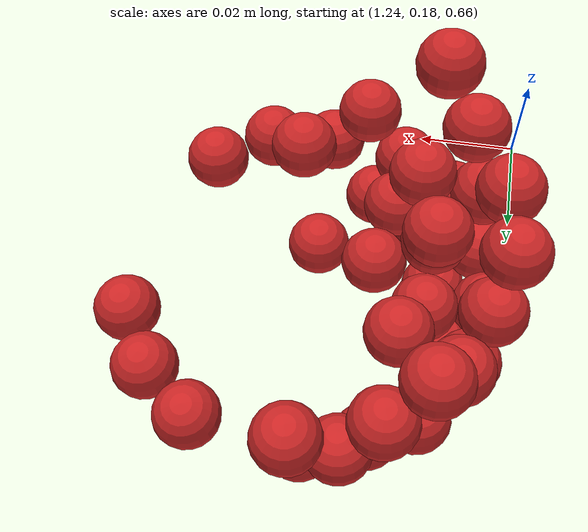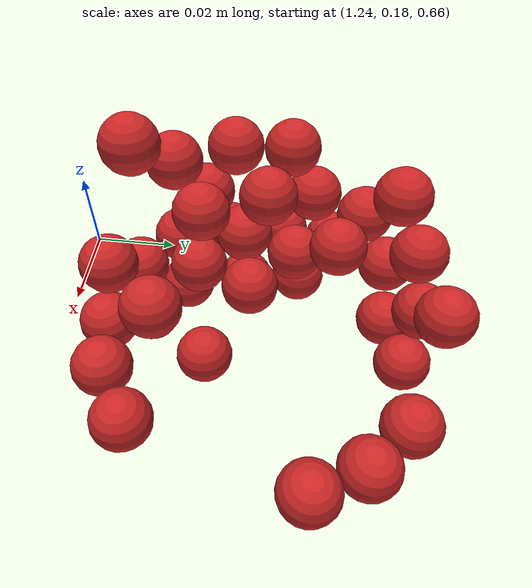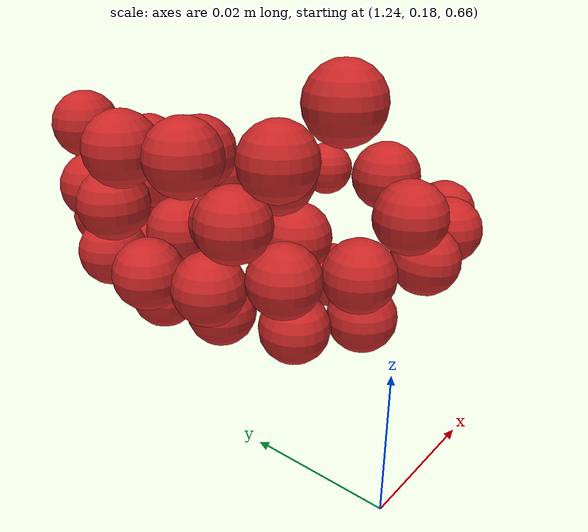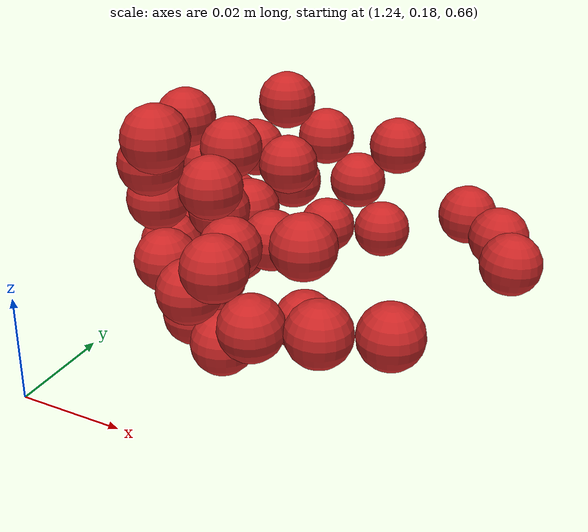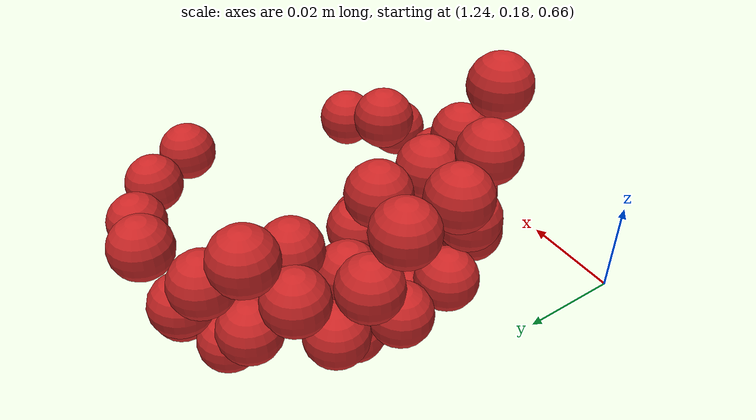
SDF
<sdf version="1.4">
 <world name="default">
  <model name="ground_plane">
   <static>1</static>
   <link name="link">
    <collision name="collision">
     <geometry><plane><normal>0 0 1</normal><size>100 100</size></plane></geometry>
     <surface><friction><ode><mu>100</mu><mu2>50</mu2></ode></friction></surface>
    </collision>
    <visual name="visual">
     <cast_shadows>0</cast_shadows>
     <geometry><plane><normal>0 0 1</normal><size>100 100</size></plane></geometry>
     <material>
      <script><uri>file://media/materials/scripts/gazebo.material</uri><name>Gazebo/Grey</name></script>
     </material>
    </visual>
    <velocity_decay><linear>0</linear><angular>0</angular></velocity_decay>
   </link>
  </model>
  <model name="sphere1">
   <pose>-0.016605 -0.050553 -0.032877 -0.006956 0.001233 0.006925</pose>
   <link name="link">
    <pose>1.28814 0.232149 0.722288 0 -0 0</pose>
    <inertial>
     <mass>0.001</mass>
     <inertia><ixx>0.004</ixx><ixy>0</ixy><ixz>0</ixz><iyy>0.004</iyy><iyz>0</iyz><izz>0.004</izz></inertia>
    </inertial>
    <collision name="collision">
     <surface>
      <contact><ode><kp>1e+10</kp><kd>1</kd></ode></contact>
      <friction><ode><mu>0.01</mu><mu2>0.01</mu2></ode></friction>
     </surface>
     <geometry><sphere><radius>0.006</radius></sphere></geometry>
    </collision>
    <visual name="visual">
     <geometry><sphere><radius>0.006</radius></sphere></geometry>
     <material>
      <script><uri>file://media/materials/scripts/gazebo.material</uri><name>Gazebo/Red</name></script>
     </material>
    </visual>
    <velocity_decay><linear>0</linear><angular>0</angular></velocity_decay>
   </link>
   <static>0</static>
  </model>
  <model name="sphere2">
   <pose>-0.03156 0.024433 -0.046757 0.091912 0.013346 0.004879</pose>
   <link name="link">
    <pose>1.30014 0.232149 0.722288 0 -0 0</pose>
    <inertial>
     <mass>0.001</mass>
     <inertia><ixx>0.004</ixx><ixy>0</ixy><ixz>0</ixz><iyy>0.004</iyy><iyz>0</iyz><izz>0.004</izz></inertia>
    </inertial>
    <collision name="collision">
     <surface>
      <contact><ode><kp>1e+10</kp><kd>1</kd></ode></contact>
      <friction><ode><mu>0.01</mu><mu2>0.01</mu2></ode></friction>
     </surface>
     <geometry><sphere><radius>0.006</radius></sphere></geometry>
    </collision>
    <visual name="visual">
     <geometry><sphere><radius>0.006</radius></sphere></geometry>
     <material>
      <script><uri>file://media/materials/scripts/gazebo.material</uri><name>Gazebo/Red</name></script>
     </material>
    </visual>
    <velocity_decay><linear>0</linear><angular>0</angular></velocity_decay>
   </link>
   <static>0</static>
  </model>
  <model name="sphere3">
   <pose>-0.020545 -0.054807 -0.027745 -0.009718 0.01113 0.002303</pose>
   <link name="link">
    <pose>1.27614 0.244149 0.722288 0 -0 0</pose>
    <inertial>
     <mass>0.001</mass>
     <inertia><ixx>0.004</ixx><ixy>0</ixy><ixz>0</ixz><iyy>0.004</iyy><iyz>0</iyz><izz>0.004</izz></inertia>
    </inertial>
    <collision name="collision">
     <surface>
      <contact><ode><kp>1e+10</kp><kd>1</kd></ode></contact>
      <friction><ode><mu>0.01</mu><mu2>0.01</mu2></ode></friction>
     </surface>
     <geometry><sphere><radius>0.006</radius></sphere></geometry>
    </collision>
    <visual name="visual">
     <geometry><sphere><radius>0.006</radius></sphere></geometry>
     <material>
      <script><uri>file://media/materials/scripts/gazebo.material</uri><name>Gazebo/Red</name></script>
     </material>
    </visual>
    <velocity_decay><linear>0</linear><angular>0</angular></velocity_decay>
   </link>
   <static>0</static>
  </model>
  <model name="sphere4">
   <pose>-0.019638 -0.020213 -0.048444 0.000771 -0.002935 7.9e-05</pose>
   <link name="link">
    <pose>1.28814 0.244149 0.722288 0 -0 0</pose>
    <inertial>
     <mass>0.001</mass>
     <inertia><ixx>0.004</ixx><ixy>0</ixy><ixz>0</ixz><iyy>0.004</iyy><iyz>0</iyz><izz>0.004</izz></inertia>
    </inertial>
    <collision name="collision">
     <surface>
      <contact><ode><kp>1e+10</kp><kd>1</kd></ode></contact>
      <friction><ode><mu>0.01</mu><mu2>0.01</mu2></ode></friction>
     </surface>
     <geometry><sphere><radius>0.006</radius></sphere></geometry>
    </collision>
    <visual name="visual">
     <geometry><sphere><radius>0.006</radius></sphere></geometry>
     <material>
      <script><uri>file://media/materials/scripts/gazebo.material</uri><name>Gazebo/Red</name></script>
     </material>
    </visual>
    <velocity_decay><linear>0</linear><angular>0</angular></velocity_decay>
   </link>
   <static>0</static>
  </model>
  <model name="sphere6">
   <pose>-0.0296 -0.04667 -0.030311 0.00043 0.003534 0.00235</pose>
   <link name="link">
    <pose>1.27614 0.256149 0.722288 0 -0 0</pose>
    <inertial>
     <mass>0.001</mass>
     <inertia><ixx>0.004</ixx><ixy>0</ixy><ixz>0</ixz><iyy>0.004</iyy><iyz>0</iyz><izz>0.004</izz></inertia>
    </inertial>
    <collision name="collision">
     <surface>
      <contact><ode><kp>1e+10</kp><kd>1</kd></ode></contact>
      <friction><ode><mu>0.01</mu><mu2>0.01</mu2></ode></friction>
     </surface>
     <geometry><sphere><radius>0.006</radius></sphere></geometry>
    </collision>
    <visual name="visual">
     <geometry><sphere><radius>0.006</radius></sphere></geometry>
     <material>
      <script><uri>file://media/materials/scripts/gazebo.material</uri><name>Gazebo/Red</name></script>
     </material>
    </visual>
    <velocity_decay><linear>0</linear><angular>0</angular></velocity_decay>
   </link>
   <static>0</static>
  </model>
  <model name="sphere7">
   <pose>-0.046009 -0.034845 -0.037973 0.003183 0.007088 -0.001687</pose>
   <link name="link">
    <pose>1.28814 0.256149 0.722288 0 -0 0</pose>
    <inertial>
     <mass>0.001</mass>
     <inertia><ixx>0.004</ixx><ixy>0</ixy><ixz>0</ixz><iyy>0.004</iyy><iyz>0</iyz><izz>0.004</izz></inertia>
    </inertial>
    <collision name="collision">
     <surface>
      <contact><ode><kp>1e+10</kp><kd>1</kd></ode></contact>
      <friction><ode><mu>0.01</mu><mu2>0.01</mu2></ode></friction>
     </surface>
     <geometry><sphere><radius>0.006</radius></sphere></geometry>
    </collision>
    <visual name="visual">
     <geometry><sphere><radius>0.006</radius></sphere></geometry>
     <material>
      <script><uri>file://media/materials/scripts/gazebo.material</uri><name>Gazebo/Red</name></script>
     </material>
    </visual>
    <velocity_decay><linear>0</linear><angular>0</angular></velocity_decay>
   </link>
   <static>0</static>
  </model>
  <model name="sphere10">
   <pose>-0.037418 -0.015098 -0.056492 0.011145 0.009968 -0.000589</pose>
   <link name="link">
    <pose>1.28814 0.232149 0.734288 0 -0 0</pose>
    <inertial>
     <mass>0.001</mass>
     <inertia><ixx>0.004</ixx><ixy>0</ixy><ixz>0</ixz><iyy>0.004</iyy><iyz>0</iyz><izz>0.004</izz></inertia>
    </inertial>
    <collision name="collision">
     <surface>
      <contact><ode><kp>1e+10</kp><kd>1</kd></ode></contact>
      <friction><ode><mu>0.01</mu><mu2>0.01</mu2></ode></friction>
     </surface>
     <geometry><sphere><radius>0.006</radius></sphere></geometry>
    </collision>
    <visual name="visual">
     <geometry><sphere><radius>0.006</radius></sphere></geometry>
     <material>
      <script><uri>file://media/materials/scripts/gazebo.material</uri><name>Gazebo/Red</name></script>
     </material>
    </visual>
    <velocity_decay><linear>0</linear><angular>0</angular></velocity_decay>
   </link>
   <static>0</static>
  </model>
  <model name="sphere11">
   <pose>-0.029988 -0.048635 -0.064378 -0.02484 -0.002739 -4e-05</pose>
   <link name="link">
    <pose>1.30014 0.232149 0.734288 0 -0 0</pose>
    <inertial>
     <mass>0.001</mass>
     <inertia><ixx>0.004</ixx><ixy>0</ixy><ixz>0</ixz><iyy>0.004</iyy><iyz>0</iyz><izz>0.004</izz></inertia>
    </inertial>
    <collision name="collision">
     <surface>
      <contact><ode><kp>1e+10</kp><kd>1</kd></ode></contact>
      <friction><ode><mu>0.01</mu><mu2>0.01</mu2></ode></friction>
     </surface>
     <geometry><sphere><radius>0.006</radius></sphere></geometry>
    </collision>
    <visual name="visual">
     <geometry><sphere><radius>0.006</radius></sphere></geometry>
     <material>
      <script><uri>file://media/materials/scripts/gazebo.material</uri><name>Gazebo/Red</name></script>
     </material>
    </visual>
    <velocity_decay><linear>0</linear><angular>0</angular></velocity_decay>
   </link>
   <static>0</static>
  </model>
  <model name="sphere15">
   <pose>-0.022106 -0.038657 -0.06072 0.004887 -0.002802 -0.005754</pose>
   <link name="link">
    <pose>1.27614 0.256149 0.734288 0 -0 0</pose>
    <inertial>
     <mass>0.001</mass>
     <inertia><ixx>0.004</ixx><ixy>0</ixy><ixz>0</ixz><iyy>0.004</iyy><iyz>0</iyz><izz>0.004</izz></inertia>
    </inertial>
    <collision name="collision">
     <surface>
      <contact><ode><kp>1e+10</kp><kd>1</kd></ode></contact>
      <friction><ode><mu>0.01</mu><mu2>0.01</mu2></ode></friction>
     </surface>
     <geometry><sphere><radius>0.006</radius></sphere></geometry>
    </collision>
    <visual name="visual">
     <geometry><sphere><radius>0.006</radius></sphere></geometry>
     <material>
      <script><uri>file://media/materials/scripts/gazebo.material</uri><name>Gazebo/Red</name></script>
     </material>
    </visual>
    <velocity_decay><linear>0</linear><angular>0</angular></velocity_decay>
   </link>
   <static>0</static>
  </model>
  <model name="sphere16">
   <pose>-0.042632 -0.028102 -0.05267 0.008144 0.01256 -0.000636</pose>
   <link name="link">
    <pose>1.28814 0.256149 0.734288 0 -0 0</pose>
    <inertial>
     <mass>0.001</mass>
     <inertia><ixx>0.004</ixx><ixy>0</ixy><ixz>0</ixz><iyy>0.004</iyy><iyz>0</iyz><izz>0.004</izz></inertia>
    </inertial>
    <collision name="collision">
     <surface>
      <contact><ode><kp>1e+10</kp><kd>1</kd></ode></contact>
      <friction><ode><mu>0.01</mu><mu2>0.01</mu2></ode></friction>
     </surface>
     <geometry><sphere><radius>0.006</radius></sphere></geometry>
    </collision>
    <visual name="visual">
     <geometry><sphere><radius>0.006</radius></sphere></geometry>
     <material>
      <script><uri>file://media/materials/scripts/gazebo.material</uri><name>Gazebo/Red</name></script>
     </material>
    </visual>
    <velocity_decay><linear>0</linear><angular>0</angular></velocity_decay>
   </link>
   <static>0</static>
  </model>
  <model name="sphere17">
   <pose>-0.052029 0.012497 -0.043813 0.022962 0.021947 0.001176</pose>
   <link name="link">
    <pose>1.30014 0.256149 0.734288 0 -0 0</pose>
    <inertial>
     <mass>0.001</mass>
     <inertia><ixx>0.004</ixx><ixy>0</ixy><ixz>0</ixz><iyy>0.004</iyy><iyz>0</iyz><izz>0.004</izz></inertia>
    </inertial>
    <collision name="collision">
     <surface>
      <contact><ode><kp>1e+10</kp><kd>1</kd></ode></contact>
      <friction><ode><mu>0.01</mu><mu2>0.01</mu2></ode></friction>
     </surface>
     <geometry><sphere><radius>0.006</radius></sphere></geometry>
    </collision>
    <visual name="visual">
     <geometry><sphere><radius>0.006</radius></sphere></geometry>
     <material>
      <script><uri>file://media/materials/scripts/gazebo.material</uri><name>Gazebo/Red</name></script>
     </material>
    </visual>
    <velocity_decay><linear>0</linear><angular>0</angular></velocity_decay>
   </link>
   <static>0</static>
  </model>
  <model name="sphere21">
   <pose>-0.018044 -0.048968 -0.040357 -0.006757 -0.00101 -0.000459</pose>
   <link name="link">
    <pose>1.27614 0.244149 0.746288 0 -0 0</pose>
    <inertial>
     <mass>0.001</mass>
     <inertia><ixx>0.004</ixx><ixy>0</ixy><ixz>0</ixz><iyy>0.004</iyy><iyz>0</iyz><izz>0.004</izz></inertia>
    </inertial>
    <collision name="collision">
     <surface>
      <contact><ode><kp>1e+10</kp><kd>1</kd></ode></contact>
      <friction><ode><mu>0.01</mu><mu2>0.01</mu2></ode></friction>
     </surface>
     <geometry><sphere><radius>0.006</radius></sphere></geometry>
    </collision>
    <visual name="visual">
     <geometry><sphere><radius>0.006</radius></sphere></geometry>
     <material>
      <script><uri>file://media/materials/scripts/gazebo.material</uri><name>Gazebo/Red</name></script>
     </material>
    </visual>
    <velocity_decay><linear>0</linear><angular>0</angular></velocity_decay>
   </link>
   <static>0</static>
  </model>
  <model name="sphere22">
   <pose>-0.024387 -0.02344 -0.068523 0.010353 -0.000228 -0.00049</pose>
   <link name="link">
    <pose>1.28814 0.244149 0.746288 0 -0 0</pose>
    <inertial>
     <mass>0.001</mass>
     <inertia><ixx>0.004</ixx><ixy>0</ixy><ixz>0</ixz><iyy>0.004</iyy><iyz>0</iyz><izz>0.004</izz></inertia>
    </inertial>
    <collision name="collision">
     <surface>
      <contact><ode><kp>1e+10</kp><kd>1</kd></ode></contact>
      <friction><ode><mu>0.01</mu><mu2>0.01</mu2></ode></friction>
     </surface>
     <geometry><sphere><radius>0.006</radius></sphere></geometry>
    </collision>
    <visual name="visual">
     <geometry><sphere><radius>0.006</radius></sphere></geometry>
     <material>
      <script><uri>file://media/materials/scripts/gazebo.material</uri><name>Gazebo/Red</name></script>
     </material>
    </visual>
    <velocity_decay><linear>0</linear><angular>0</angular></velocity_decay>
   </link>
   <static>0</static>
  </model>
  <model name="sphere23">
   <pose>-0.021361 -0.02482 -0.081837 0.004586 -0.001445 -0.000687</pose>
   <link name="link">
    <pose>1.30014 0.244149 0.746288 0 -0 0</pose>
    <inertial>
     <mass>0.001</mass>
     <inertia><ixx>0.004</ixx><ixy>0</ixy><ixz>0</ixz><iyy>0.004</iyy><iyz>0</iyz><izz>0.004</izz></inertia>
    </inertial>
    <collision name="collision">
     <surface>
      <contact><ode><kp>1e+10</kp><kd>1</kd></ode></contact>
      <friction><ode><mu>0.01</mu><mu2>0.01</mu2></ode></friction>
     </surface>
     <geometry><sphere><radius>0.006</radius></sphere></geometry>
    </collision>
    <visual name="visual">
     <geometry><sphere><radius>0.006</radius></sphere></geometry>
     <material>
      <script><uri>file://media/materials/scripts/gazebo.material</uri><name>Gazebo/Red</name></script>
     </material>
    </visual>
    <velocity_decay><linear>0</linear><angular>0</angular></velocity_decay>
   </link>
   <static>0</static>
  </model>
  <model name="sphere24">
   <pose>-0.032333 -0.03788 -0.046941 0.000676 0.001702 0.000337</pose>
   <link name="link">
    <pose>1.27614 0.256149 0.746288 0 -0 0</pose>
    <inertial>
     <mass>0.001</mass>
     <inertia><ixx>0.004</ixx><ixy>0</ixy><ixz>0</ixz><iyy>0.004</iyy><iyz>0</iyz><izz>0.004</izz></inertia>
    </inertial>
    <collision name="collision">
     <surface>
      <contact><ode><kp>1e+10</kp><kd>1</kd></ode></contact>
      <friction><ode><mu>0.01</mu><mu2>0.01</mu2></ode></friction>
     </surface>
     <geometry><sphere><radius>0.006</radius></sphere></geometry>
    </collision>
    <visual name="visual">
     <geometry><sphere><radius>0.006</radius></sphere></geometry>
     <material>
      <script><uri>file://media/materials/scripts/gazebo.material</uri><name>Gazebo/Red</name></script>
     </material>
    </visual>
    <velocity_decay><linear>0</linear><angular>0</angular></velocity_decay>
   </link>
   <static>0</static>
  </model>
  <model name="sphere25">
   <pose>-0.046109 -0.02712 -0.046509 -0.001532 0.002019 -6e-05</pose>
   <link name="link">
    <pose>1.28814 0.256149 0.746288 0 -0 0</pose>
    <inertial>
     <mass>0.001</mass>
     <inertia><ixx>0.004</ixx><ixy>0</ixy><ixz>0</ixz><iyy>0.004</iyy><iyz>0</iyz><izz>0.004</izz></inertia>
    </inertial>
    <collision name="collision">
     <surface>
      <contact><ode><kp>1e+10</kp><kd>1</kd></ode></contact>
      <friction><ode><mu>0.01</mu><mu2>0.01</mu2></ode></friction>
     </surface>
     <geometry><sphere><radius>0.006</radius></sphere></geometry>
    </collision>
    <visual name="visual">
     <geometry><sphere><radius>0.006</radius></sphere></geometry>
     <material>
      <script><uri>file://media/materials/scripts/gazebo.material</uri><name>Gazebo/Red</name></script>
     </material>
    </visual>
    <velocity_decay><linear>0</linear><angular>0</angular></velocity_decay>
   </link>
   <static>0</static>
  </model>
  <model name="sphere29">
   <pose>-0.015729 -0.059733 -0.063985 -0.022001 0.008778 0.006506</pose>
   <link name="link">
    <pose>1.30014 0.232149 0.758288 0 -0 0</pose>
    <inertial>
     <mass>0.001</mass>
     <inertia><ixx>0.004</ixx><ixy>0</ixy><ixz>0</ixz><iyy>0.004</iyy><iyz>0</iyz><izz>0.004</izz></inertia>
    </inertial>
    <collision name="collision">
     <surface>
      <contact><ode><kp>1e+10</kp><kd>1</kd></ode></contact>
      <friction><ode><mu>0.01</mu><mu2>0.01</mu2></ode></friction>
     </surface>
     <geometry><sphere><radius>0.006</radius></sphere></geometry>
    </collision>
    <visual name="visual">
     <geometry><sphere><radius>0.006</radius></sphere></geometry>
     <material>
      <script><uri>file://media/materials/scripts/gazebo.material</uri><name>Gazebo/Red</name></script>
     </material>
    </visual>
    <velocity_decay><linear>0</linear><angular>0</angular></velocity_decay>
   </link>
   <static>0</static>
  </model>
  <model name="sphere30">
   <pose>-0.016608 -0.019493 -0.069255 0.000168 -0.004008 0.001293</pose>
   <link name="link">
    <pose>1.27614 0.244149 0.758288 0 -0 0</pose>
    <inertial>
     <mass>0.001</mass>
     <inertia><ixx>0.004</ixx><ixy>0</ixy><ixz>0</ixz><iyy>0.004</iyy><iyz>0</iyz><izz>0.004</izz></inertia>
    </inertial>
    <collision name="collision">
     <surface>
      <contact><ode><kp>1e+10</kp><kd>1</kd></ode></contact>
      <friction><ode><mu>0.01</mu><mu2>0.01</mu2></ode></friction>
     </surface>
     <geometry><sphere><radius>0.006</radius></sphere></geometry>
    </collision>
    <visual name="visual">
     <geometry><sphere><radius>0.006</radius></sphere></geometry>
     <material>
      <script><uri>file://media/materials/scripts/gazebo.material</uri><name>Gazebo/Red</name></script>
     </material>
    </visual>
    <velocity_decay><linear>0</linear><angular>0</angular></velocity_decay>
   </link>
   <static>0</static>
  </model>
  <model name="sphere31">
   <pose>-0.031581 -0.022716 -0.075835 -0.000493 -0.000743 -0.000499</pose>
   <link name="link">
    <pose>1.28814 0.244149 0.758288 0 -0 0</pose>
    <inertial>
     <mass>0.001</mass>
     <inertia><ixx>0.004</ixx><ixy>0</ixy><ixz>0</ixz><iyy>0.004</iyy><iyz>0</iyz><izz>0.004</izz></inertia>
    </inertial>
    <collision name="collision">
     <surface>
      <contact><ode><kp>1e+10</kp><kd>1</kd></ode></contact>
      <friction><ode><mu>0.01</mu><mu2>0.01</mu2></ode></friction>
     </surface>
     <geometry><sphere><radius>0.006</radius></sphere></geometry>
    </collision>
    <visual name="visual">
     <geometry><sphere><radius>0.006</radius></sphere></geometry>
     <material>
      <script><uri>file://media/materials/scripts/gazebo.material</uri><name>Gazebo/Red</name></script>
     </material>
    </visual>
    <velocity_decay><linear>0</linear><angular>0</angular></velocity_decay>
   </link>
   <static>0</static>
  </model>
  <model name="sphere32">
   <pose>-0.014536 -0.033952 -0.059234 0.001465 0.017426 -0.004103</pose>
   <link name="link">
    <pose>1.30014 0.244149 0.758288 0 -0 0</pose>
    <inertial>
     <mass>0.001</mass>
     <inertia><ixx>0.004</ixx><ixy>0</ixy><ixz>0</ixz><iyy>0.004</iyy><iyz>0</iyz><izz>0.004</izz></inertia>
    </inertial>
    <collision name="collision">
     <surface>
      <contact><ode><kp>1e+10</kp><kd>1</kd></ode></contact>
      <friction><ode><mu>0.01</mu><mu2>0.01</mu2></ode></friction>
     </surface>
     <geometry><sphere><radius>0.006</radius></sphere></geometry>
    </collision>
    <visual name="visual">
     <geometry><sphere><radius>0.006</radius></sphere></geometry>
     <material>
      <script><uri>file://media/materials/scripts/gazebo.material</uri><name>Gazebo/Red</name></script>
     </material>
    </visual>
    <velocity_decay><linear>0</linear><angular>0</angular></velocity_decay>
   </link>
   <static>0</static>
  </model>
  <model name="sphere34">
   <pose>-0.035717 -0.017693 -0.09733 0.01088 -0.00927 -0.001261</pose>
   <link name="link">
    <pose>1.28814 0.256149 0.758288 0 -0 0</pose>
    <inertial>
     <mass>0.001</mass>
     <inertia><ixx>0.004</ixx><ixy>0</ixy><ixz>0</ixz><iyy>0.004</iyy><iyz>0</iyz><izz>0.004</izz></inertia>
    </inertial>
    <collision name="collision">
     <surface>
      <contact><ode><kp>1e+10</kp><kd>1</kd></ode></contact>
      <friction><ode><mu>0.01</mu><mu2>0.01</mu2></ode></friction>
     </surface>
     <geometry><sphere><radius>0.006</radius></sphere></geometry>
    </collision>
    <visual name="visual">
     <geometry><sphere><radius>0.006</radius></sphere></geometry>
     <material>
      <script><uri>file://media/materials/scripts/gazebo.material</uri><name>Gazebo/Red</name></script>
     </material>
    </visual>
    <velocity_decay><linear>0</linear><angular>0</angular></velocity_decay>
   </link>
   <static>0</static>
  </model>
  <model name="sphere39">
   <pose>-0.026816 -0.038949 -0.06888 0.001472 0.00328 0.001699</pose>
   <link name="link">
    <pose>1.27614 0.244149 0.770288 0 -0 0</pose>
    <inertial>
     <mass>0.001</mass>
     <inertia><ixx>0.004</ixx><ixy>0</ixy><ixz>0</ixz><iyy>0.004</iyy><iyz>0</iyz><izz>0.004</izz></inertia>
    </inertial>
    <collision name="collision">
     <surface>
      <contact><ode><kp>1e+10</kp><kd>1</kd></ode></contact>
      <friction><ode><mu>0.01</mu><mu2>0.01</mu2></ode></friction>
     </surface>
     <geometry><sphere><radius>0.006</radius></sphere></geometry>
    </collision>
    <visual name="visual">
     <geometry><sphere><radius>0.006</radius></sphere></geometry>
     <material>
      <script><uri>file://media/materials/scripts/gazebo.material</uri><name>Gazebo/Red</name></script>
     </material>
    </visual>
    <velocity_decay><linear>0</linear><angular>0</angular></velocity_decay>
   </link>
   <static>0</static>
  </model>
  <model name="sphere40">
   <pose>-0.025564 -0.032658 -0.082856 -0.000195 -0.003466 0.000905</pose>
   <link name="link">
    <pose>1.28814 0.244149 0.770288 0 -0 0</pose>
    <inertial>
     <mass>0.001</mass>
     <inertia><ixx>0.004</ixx><ixy>0</ixy><ixz>0</ixz><iyy>0.004</iyy><iyz>0</iyz><izz>0.004</izz></inertia>
    </inertial>
    <collision name="collision">
     <surface>
      <contact><ode><kp>1e+10</kp><kd>1</kd></ode></contact>
      <friction><ode><mu>0.01</mu><mu2>0.01</mu2></ode></friction>
     </surface>
     <geometry><sphere><radius>0.006</radius></sphere></geometry>
    </collision>
    <visual name="visual">
     <geometry><sphere><radius>0.006</radius></sphere></geometry>
     <material>
      <script><uri>file://media/materials/scripts/gazebo.material</uri><name>Gazebo/Red</name></script>
     </material>
    </visual>
    <velocity_decay><linear>0</linear><angular>0</angular></velocity_decay>
   </link>
   <static>0</static>
  </model>
  <model name="sphere42">
   <pose>-0.027502 -0.017541 -0.095365 0.00217 -0.0001 0.002687</pose>
   <link name="link">
    <pose>1.27614 0.256149 0.770288 0 -0 0</pose>
    <inertial>
     <mass>0.001</mass>
     <inertia><ixx>0.004</ixx><ixy>0</ixy><ixz>0</ixz><iyy>0.004</iyy><iyz>0</iyz><izz>0.004</izz></inertia>
    </inertial>
    <collision name="collision">
     <surface>
      <contact><ode><kp>1e+10</kp><kd>1</kd></ode></contact>
      <friction><ode><mu>0.01</mu><mu2>0.01</mu2></ode></friction>
     </surface>
     <geometry><sphere><radius>0.006</radius></sphere></geometry>
    </collision>
    <visual name="visual">
     <geometry><sphere><radius>0.006</radius></sphere></geometry>
     <material>
      <script><uri>file://media/materials/scripts/gazebo.material</uri><name>Gazebo/Red</name></script>
     </material>
    </visual>
    <velocity_decay><linear>0</linear><angular>0</angular></velocity_decay>
   </link>
   <static>0</static>
  </model>
  <model name="sphere43">
   <pose>-0.014788 0.007189 -0.101976 0.008689 0.002365 0.000294</pose>
   <link name="link">
    <pose>1.28814 0.256149 0.770288 0 -0 0</pose>
    <inertial>
     <mass>0.001</mass>
     <inertia><ixx>0.004</ixx><ixy>0</ixy><ixz>0</ixz><iyy>0.004</iyy><iyz>0</iyz><izz>0.004</izz></inertia>
    </inertial>
    <collision name="collision">
     <surface>
      <contact><ode><kp>1e+10</kp><kd>1</kd></ode></contact>
      <friction><ode><mu>0.01</mu><mu2>0.01</mu2></ode></friction>
     </surface>
     <geometry><sphere><radius>0.006</radius></sphere></geometry>
    </collision>
    <visual name="visual">
     <geometry><sphere><radius>0.006</radius></sphere></geometry>
     <material>
      <script><uri>file://media/materials/scripts/gazebo.material</uri><name>Gazebo/Red</name></script>
     </material>
    </visual>
    <velocity_decay><linear>0</linear><angular>0</angular></velocity_decay>
   </link>
   <static>0</static>
  </model>
  <model name="sphere51">
   <pose>-0.052599 -0.010813 -0.068785 0.015107 0.038595 -0.000134</pose>
   <link name="link">
    <pose>1.27614 0.256149 0.782288 0 -0 0</pose>
    <inertial>
     <mass>0.001</mass>
     <inertia><ixx>0.004</ixx><ixy>0</ixy><ixz>0</ixz><iyy>0.004</iyy><iyz>0</iyz><izz>0.004</izz></inertia>
    </inertial>
    <collision name="collision">
     <surface>
      <contact><ode><kp>1e+10</kp><kd>1</kd></ode></contact>
      <friction><ode><mu>0.01</mu><mu2>0.01</mu2></ode></friction>
     </surface>
     <geometry><sphere><radius>0.006</radius></sphere></geometry>
    </collision>
    <visual name="visual">
     <geometry><sphere><radius>0.006</radius></sphere></geometry>
     <material>
      <script><uri>file://media/materials/scripts/gazebo.material</uri><name>Gazebo/Red</name></script>
     </material>
    </visual>
    <velocity_decay><linear>0</linear><angular>0</angular></velocity_decay>
   </link>
   <static>0</static>
  </model>
  <model name="sphere52">
   <pose>-0.056337 0.085232 -0.066703 0.10677 0.047271 0.002215</pose>
   <link name="link">
    <pose>1.28814 0.256149 0.782288 0 -0 0</pose>
    <inertial>
     <mass>0.001</mass>
     <inertia><ixx>0.004</ixx><ixy>0</ixy><ixz>0</ixz><iyy>0.004</iyy><iyz>0</iyz><izz>0.004</izz></inertia>
    </inertial>
    <collision name="collision">
     <surface>
      <contact><ode><kp>1e+10</kp><kd>1</kd></ode></contact>
      <friction><ode><mu>0.01</mu><mu2>0.01</mu2></ode></friction>
     </surface>
     <geometry><sphere><radius>0.006</radius></sphere></geometry>
    </collision>
    <visual name="visual">
     <geometry><sphere><radius>0.006</radius></sphere></geometry>
     <material>
      <script><uri>file://media/materials/scripts/gazebo.material</uri><name>Gazebo/Red</name></script>
     </material>
    </visual>
    <velocity_decay><linear>0</linear><angular>0</angular></velocity_decay>
   </link>
   <static>0</static>
  </model>
  <model name="sphere56">
   <pose>-0.017461 -0.023633 -0.108545 0.004443 -0.000747 0.001324</pose>
   <link name="link">
    <pose>1.30014 0.232149 0.794288 0 -0 0</pose>
    <inertial>
     <mass>0.001</mass>
     <inertia><ixx>0.004</ixx><ixy>0</ixy><ixz>0</ixz><iyy>0.004</iyy><iyz>0</iyz><izz>0.004</izz></inertia>
    </inertial>
    <collision name="collision">
     <surface>
      <contact><ode><kp>1e+10</kp><kd>1</kd></ode></contact>
      <friction><ode><mu>0.01</mu><mu2>0.01</mu2></ode></friction>
     </surface>
     <geometry><sphere><radius>0.006</radius></sphere></geometry>
    </collision>
    <visual name="visual">
     <geometry><sphere><radius>0.006</radius></sphere></geometry>
     <material>
      <script><uri>file://media/materials/scripts/gazebo.material</uri><name>Gazebo/Red</name></script>
     </material>
    </visual>
    <velocity_decay><linear>0</linear><angular>0</angular></velocity_decay>
   </link>
   <static>0</static>
  </model>
  <model name="sphere57">
   <pose>-0.024434 -0.006874 -0.118893 0.000975 -0.008336 -0.000805</pose>
   <link name="link">
    <pose>1.27614 0.244149 0.794288 0 -0 0</pose>
    <inertial>
     <mass>0.001</mass>
     <inertia><ixx>0.004</ixx><ixy>0</ixy><ixz>0</ixz><iyy>0.004</iyy><iyz>0</iyz><izz>0.004</izz></inertia>
    </inertial>
    <collision name="collision">
     <surface>
      <contact><ode><kp>1e+10</kp><kd>1</kd></ode></contact>
      <friction><ode><mu>0.01</mu><mu2>0.01</mu2></ode></friction>
     </surface>
     <geometry><sphere><radius>0.006</radius></sphere></geometry>
    </collision>
    <visual name="visual">
     <geometry><sphere><radius>0.006</radius></sphere></geometry>
     <material>
      <script><uri>file://media/materials/scripts/gazebo.material</uri><name>Gazebo/Red</name></script>
     </material>
    </visual>
    <velocity_decay><linear>0</linear><angular>0</angular></velocity_decay>
   </link>
   <static>0</static>
  </model>
  <model name="sphere61">
   <pose>-0.03222 0.009558 -0.101891 0.007135 0.006085 -0.001916</pose>
   <link name="link">
    <pose>1.28814 0.256149 0.794288 0 -0 0</pose>
    <inertial>
     <mass>0.001</mass>
     <inertia><ixx>0.004</ixx><ixy>0</ixy><ixz>0</ixz><iyy>0.004</iyy><iyz>0</iyz><izz>0.004</izz></inertia>
    </inertial>
    <collision name="collision">
     <surface>
      <contact><ode><kp>1e+10</kp><kd>1</kd></ode></contact>
      <friction><ode><mu>0.01</mu><mu2>0.01</mu2></ode></friction>
     </surface>
     <geometry><sphere><radius>0.006</radius></sphere></geometry>
    </collision>
    <visual name="visual">
     <geometry><sphere><radius>0.006</radius></sphere></geometry>
     <material>
      <script><uri>file://media/materials/scripts/gazebo.material</uri><name>Gazebo/Red</name></script>
     </material>
    </visual>
    <velocity_decay><linear>0</linear><angular>0</angular></velocity_decay>
   </link>
   <static>0</static>
  </model>
  <model name="sphere69">
   <pose>-0.025263 -0.011563 -0.121487 -0.000935 -0.000813 0.001046</pose>
   <link name="link">
    <pose>1.27614 0.256149 0.806288 0 -0 0</pose>
    <inertial>
     <mass>0.001</mass>
     <inertia><ixx>0.004</ixx><ixy>0</ixy><ixz>0</ixz><iyy>0.004</iyy><iyz>0</iyz><izz>0.004</izz></inertia>
    </inertial>
    <collision name="collision">
     <surface>
      <contact><ode><kp>1e+10</kp><kd>1</kd></ode></contact>
      <friction><ode><mu>0.01</mu><mu2>0.01</mu2></ode></friction>
     </surface>
     <geometry><sphere><radius>0.006</radius></sphere></geometry>
    </collision>
    <visual name="visual">
     <geometry><sphere><radius>0.006</radius></sphere></geometry>
     <material>
      <script><uri>file://media/materials/scripts/gazebo.material</uri><name>Gazebo/Red</name></script>
     </material>
    </visual>
    <velocity_decay><linear>0</linear><angular>0</angular></velocity_decay>
   </link>
   <static>0</static>
  </model>
  <model name="sphere78">
   <pose>-0.014528 -0.00422 -0.150108 0.001863 -0.006474 0.001604</pose>
   <link name="link">
    <pose>1.27614 0.256149 0.818288 0 -0 0</pose>
    <inertial>
     <mass>0.001</mass>
     <inertia><ixx>0.004</ixx><ixy>0</ixy><ixz>0</ixz><iyy>0.004</iyy><iyz>0</iyz><izz>0.004</izz></inertia>
    </inertial>
    <collision name="collision">
     <surface>
      <contact><ode><kp>1e+10</kp><kd>1</kd></ode></contact>
      <friction><ode><mu>0.01</mu><mu2>0.01</mu2></ode></friction>
     </surface>
     <geometry><sphere><radius>0.006</radius></sphere></geometry>
    </collision>
    <visual name="visual">
     <geometry><sphere><radius>0.006</radius></sphere></geometry>
     <material>
      <script><uri>file://media/materials/scripts/gazebo.material</uri><name>Gazebo/Red</name></script>
     </material>
    </visual>
    <velocity_decay><linear>0</linear><angular>0</angular></velocity_decay>
   </link>
   <static>0</static>
  </model>
  <model name="sphere86">
   <pose>-0.031977 -0.033776 -0.076757 -0.037969 0.051315 -0.00229</pose>
   <link name="link">
    <pose>1.30014 0.244149 0.830288 0 -0 0</pose>
    <inertial>
     <mass>0.001</mass>
     <inertia><ixx>0.004</ixx><ixy>0</ixy><ixz>0</ixz><iyy>0.004</iyy><iyz>0</iyz><izz>0.004</izz></inertia>
    </inertial>
    <collision name="collision">
     <surface>
      <contact><ode><kp>1e+10</kp><kd>1</kd></ode></contact>
      <friction><ode><mu>0.01</mu><mu2>0.01</mu2></ode></friction>
     </surface>
     <geometry><sphere><radius>0.006</radius></sphere></geometry>
    </collision>
    <visual name="visual">
     <geometry><sphere><radius>0.006</radius></sphere></geometry>
     <material>
      <script><uri>file://media/materials/scripts/gazebo.material</uri><name>Gazebo/Red</name></script>
     </material>
    </visual>
    <velocity_decay><linear>0</linear><angular>0</angular></velocity_decay>
   </link>
   <static>0</static>
  </model>
  <model name="sphere87">
   <pose>-0.01474 -0.015145 -0.145743 -0.001453 -0.00127 -0.000773</pose>
   <link name="link">
    <pose>1.27614 0.256149 0.830288 0 -0 0</pose>
    <inertial>
     <mass>0.001</mass>
     <inertia><ixx>0.004</ixx><ixy>0</ixy><ixz>0</ixz><iyy>0.004</iyy><iyz>0</iyz><izz>0.004</izz></inertia>
    </inertial>
    <collision name="collision">
     <surface>
      <contact><ode><kp>1e+10</kp><kd>1</kd></ode></contact>
      <friction><ode><mu>0.01</mu><mu2>0.01</mu2></ode></friction>
     </surface>
     <geometry><sphere><radius>0.006</radius></sphere></geometry>
    </collision>
    <visual name="visual">
     <geometry><sphere><radius>0.006</radius></sphere></geometry>
     <material>
      <script><uri>file://media/materials/scripts/gazebo.material</uri><name>Gazebo/Red</name></script>
     </material>
    </visual>
    <velocity_decay><linear>0</linear><angular>0</angular></velocity_decay>
   </link>
   <static>0</static>
  </model>
  <model name="sphere89">
   <pose>-0.020444 -0.068654 -0.106416 -0.082745 0.018795 0.001121</pose>
   <link name="link">
    <pose>1.30014 0.256149 0.830288 0 -0 0</pose>
    <inertial>
     <mass>0.001</mass>
     <inertia><ixx>0.004</ixx><ixy>0</ixy><ixz>0</ixz><iyy>0.004</iyy><iyz>0</iyz><izz>0.004</izz></inertia>
    </inertial>
    <collision name="collision">
     <surface>
      <contact><ode><kp>1e+10</kp><kd>1</kd></ode></contact>
      <friction><ode><mu>0.01</mu><mu2>0.01</mu2></ode></friction>
     </surface>
     <geometry><sphere><radius>0.006</radius></sphere></geometry>
    </collision>
    <visual name="visual">
     <geometry><sphere><radius>0.006</radius></sphere></geometry>
     <material>
      <script><uri>file://media/materials/scripts/gazebo.material</uri><name>Gazebo/Red</name></script>
     </material>
    </visual>
    <velocity_decay><linear>0</linear><angular>0</angular></velocity_decay>
   </link>
   <static>0</static>
  </model>
  <model name="sphere93">
   <pose>-0.01573 -0.0098 -0.169892 0.001298 -0.004837 -0.000738</pose>
   <link name="link">
    <pose>1.27614 0.244149 0.842288 0 -0 0</pose>
    <inertial>
     <mass>0.001</mass>
     <inertia><ixx>0.004</ixx><ixy>0</ixy><ixz>0</ixz><iyy>0.004</iyy><iyz>0</iyz><izz>0.004</izz></inertia>
    </inertial>
    <collision name="collision">
     <surface>
      <contact><ode><kp>1e+10</kp><kd>1</kd></ode></contact>
      <friction><ode><mu>0.01</mu><mu2>0.01</mu2></ode></friction>
     </surface>
     <geometry><sphere><radius>0.006</radius></sphere></geometry>
    </collision>
    <visual name="visual">
     <geometry><sphere><radius>0.006</radius></sphere></geometry>
     <material>
      <script><uri>file://media/materials/scripts/gazebo.material</uri><name>Gazebo/Red</name></script>
     </material>
    </visual>
    <velocity_decay><linear>0</linear><angular>0</angular></velocity_decay>
   </link>
   <static>0</static>
  </model>
  <model name="sphere96">
   <pose>-0.023028 1.5e-05 -0.146987 0.003193 0.001014 -0.000317</pose>
   <link name="link">
    <pose>1.27614 0.256149 0.842288 0 -0 0</pose>
    <inertial>
     <mass>0.001</mass>
     <inertia><ixx>0.004</ixx><ixy>0</ixy><ixz>0</ixz><iyy>0.004</iyy><iyz>0</iyz><izz>0.004</izz></inertia>
    </inertial>
    <collision name="collision">
     <surface>
      <contact><ode><kp>1e+10</kp><kd>1</kd></ode></contact>
      <friction><ode><mu>0.01</mu><mu2>0.01</mu2></ode></friction>
     </surface>
     <geometry><sphere><radius>0.006</radius></sphere></geometry>
    </collision>
    <visual name="visual">
     <geometry><sphere><radius>0.006</radius></sphere></geometry>
     <material>
      <script><uri>file://media/materials/scripts/gazebo.material</uri><name>Gazebo/Red</name></script>
     </material>
    </visual>
    <velocity_decay><linear>0</linear><angular>0</angular></velocity_decay>
   </link>
   <static>0</static>
  </model>
  <model name="sphere106">
   <pose>-0.014961 0.013864 -0.167112 0.008709 0.003188 -0.000479</pose>
   <link name="link">
    <pose>1.28814 0.256149 0.854288 0 -0 0</pose>
    <inertial>
     <mass>0.001</mass>
     <inertia><ixx>0.004</ixx><ixy>0</ixy><ixz>0</ixz><iyy>0.004</iyy><iyz>0</iyz><izz>0.004</izz></inertia>
    </inertial>
    <collision name="collision">
     <surface>
      <contact><ode><kp>1e+10</kp><kd>1</kd></ode></contact>
      <friction><ode><mu>0.01</mu><mu2>0.01</mu2></ode></friction>
     </surface>
     <geometry><sphere><radius>0.006</radius></sphere></geometry>
    </collision>
    <visual name="visual">
     <geometry><sphere><radius>0.006</radius></sphere></geometry>
     <material>
      <script><uri>file://media/materials/scripts/gazebo.material</uri><name>Gazebo/Red</name></script>
     </material>
    </visual>
    <velocity_decay><linear>0</linear><angular>0</angular></velocity_decay>
   </link>
   <static>0</static>
  </model>
  <model name="sphere107">
   <pose>-0.022699 -0.055952 -0.120819 -0.048108 0.033975 0.006038</pose>
   <link name="link">
    <pose>1.30014 0.256149 0.854288 0 -0 0</pose>
    <inertial>
     <mass>0.001</mass>
     <inertia><ixx>0.004</ixx><ixy>0</ixy><ixz>0</ixz><iyy>0.004</iyy><iyz>0</iyz><izz>0.004</izz></inertia>
    </inertial>
    <collision name="collision">
     <surface>
      <contact><ode><kp>1e+10</kp><kd>1</kd></ode></contact>
      <friction><ode><mu>0.01</mu><mu2>0.01</mu2></ode></friction>
     </surface>
     <geometry><sphere><radius>0.006</radius></sphere></geometry>
    </collision>
    <visual name="visual">
     <geometry><sphere><radius>0.006</radius></sphere></geometry>
     <material>
      <script><uri>file://media/materials/scripts/gazebo.material</uri><name>Gazebo/Red</name></script>
     </material>
    </visual>
    <velocity_decay><linear>0</linear><angular>0</angular></velocity_decay>
   </link>
   <static>0</static>
  </model>
 </world>
</sdf>
